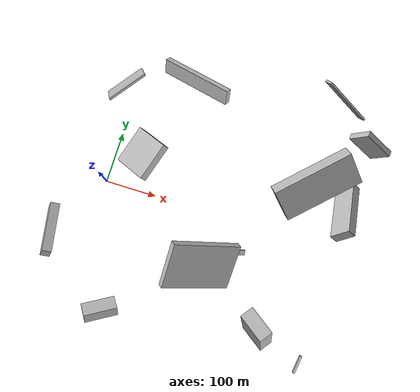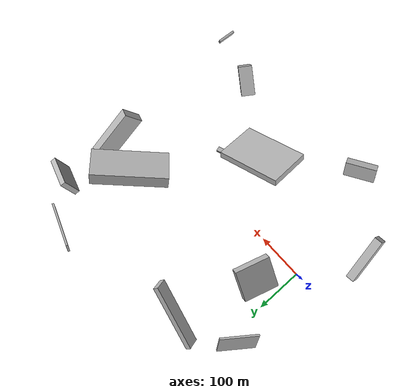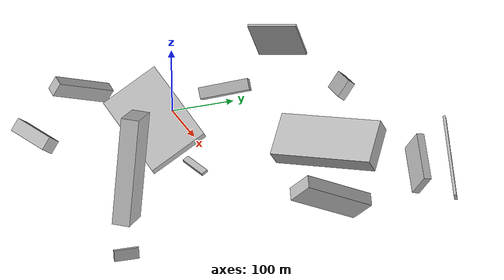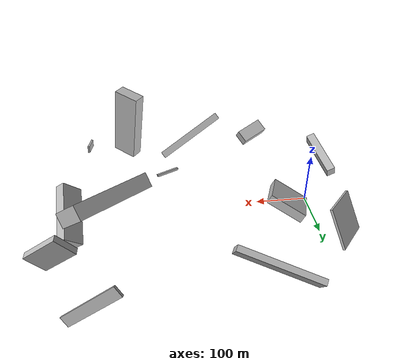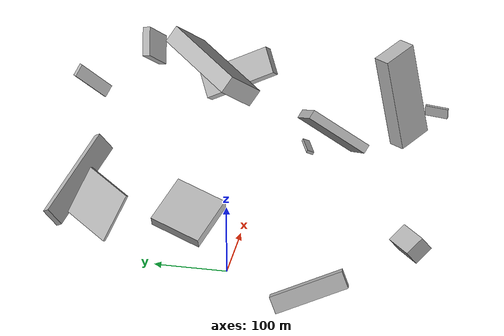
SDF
<sdf version="1.6">
 <world name="default">
  <scene>
   <sky><clouds><speed>12</speed></clouds></sky>
   <ambient>0.4 0.4 0.4 1</ambient>
   <background>0.7 0.7 0.7 1</background>
   <shadows>1</shadows>
  </scene>
  <gravity>0 0 -9.8066</gravity>
  <magnetic_field>6e-06 2.3e-05 -4.2e-05</magnetic_field>
  <physics default="0" name="default_physics" type="ode">
   <ode>
    <solver>
     <type>quick</type>
     <iters>10</iters>
     <sor>1.0</sor>
     <use_dynamic_moi_rescaling>0</use_dynamic_moi_rescaling>
    </solver>
    <constraints>
     <cfm>0</cfm>
     <erp>0.2</erp>
     <contact_max_correcting_vel>100</contact_max_correcting_vel>
     <contact_surface_layer>0.001</contact_surface_layer>
    </constraints>
   </ode>
   <max_step_size>0.004</max_step_size>
   <real_time_factor>1</real_time_factor>
   <real_time_update_rate>250</real_time_update_rate>
  </physics>
  <light name="sun" type="directional">
   <pose>0 0 10 0 0 0</pose>
   <diffuse>0.8 0.8 0.8 1</diffuse>
   <specular>0.2 0.2 0.2 1</specular>
   <attenuation>
    <range>1000</range>
    <constant>0.9</constant>
    <linear>0.01</linear>
    <quadratic>0.001</quadratic>
   </attenuation>
   <direction>-0.5 0.1 -0.9</direction>
  </light>
  <model name="building_1">
   <static>0</static>
   <pose>68.81872105369267 -232.17180622319296 36.772898238781195 2.882315274692647 -0.6226978160001785 -0.8772600780814191</pose>
   <link name="link">
    <gravity>0</gravity>
    <pose>0 0 10.5 0 0 0</pose>
    <collision name="collision"><geometry><box><size>29 63 21</size></box></geometry></collision>
    <visual name="visual">
     <cast_shadows>0</cast_shadows>
     <geometry><box><size>29 63 21</size></box></geometry>
     <material>
      <script>
       <uri>model://HANNAS_wall/materials/scripts</uri>
       <uri>model://HANNAS_wall/materials/textures</uri>
       <name>vrc/HANNAS_wall</name>
      </script>
     </material>
    </visual>
   </link>
  </model>
  <model name="building_2">
   <static>0</static>
   <pose>28.878116871375777 77.73210676834583 35.10764074832775 1.112135072751048 -0.19328678339280225 1.2476282840214816</pose>
   <link name="link">
    <gravity>0</gravity>
    <pose>0 0 35.5 0 0 0</pose>
    <collision name="collision"><geometry><box><size>75 17 71</size></box></geometry></collision>
    <visual name="visual">
     <cast_shadows>0</cast_shadows>
     <geometry><box><size>75 17 71</size></box></geometry>
     <material>
      <script>
       <uri>model://HANNAS_wall/materials/scripts</uri>
       <uri>model://HANNAS_wall/materials/textures</uri>
       <name>vrc/HANNAS_wall</name>
      </script>
     </material>
    </visual>
   </link>
  </model>
  <model name="building_3">
   <static>0</static>
   <pose>403.2759960505906 80.50551404331213 82.70663383247707 0.8990446433723384 0.11855411265143329 -2.366485642830715</pose>
   <link name="link">
    <gravity>0</gravity>
    <pose>0 0 32.5 0 0 0</pose>
    <collision name="collision"><geometry><box><size>150 27 65</size></box></geometry></collision>
    <visual name="visual">
     <cast_shadows>0</cast_shadows>
     <geometry><box><size>150 27 65</size></box></geometry>
     <material>
      <script>
       <uri>model://HANNAS_wall/materials/scripts</uri>
       <uri>model://HANNAS_wall/materials/textures</uri>
       <name>vrc/HANNAS_wall</name>
      </script>
     </material>
    </visual>
   </link>
  </model>
  <model name="building_4">
   <static>0</static>
   <pose>115.42625001743534 236.1780513359383 50.26779650257783 0.9707120905928287 -0.3255446618972254 -0.2958519671285137</pose>
   <link name="link">
    <gravity>0</gravity>
    <pose>0 0 5.5 0 0 0</pose>
    <collision name="collision"><geometry><box><size>150 29 11</size></box></geometry></collision>
    <visual name="visual">
     <cast_shadows>0</cast_shadows>
     <geometry><box><size>150 29 11</size></box></geometry>
     <material>
      <script>
       <uri>model://HANNAS_wall/materials/scripts</uri>
       <uri>model://HANNAS_wall/materials/textures</uri>
       <name>vrc/HANNAS_wall</name>
      </script>
     </material>
    </visual>
   </link>
  </model>
  <model name="building_5">
   <static>0</static>
   <pose>-56.46527732485482 -169.9210792375623 44.343099454779896 -2.372402190368029 -1.0564990634707871 0.98901039121095</pose>
   <link name="link">
    <gravity>0</gravity>
    <pose>0 0 51.0 0 0 0</pose>
    <collision name="collision"><geometry><box><size>24 18 102</size></box></geometry></collision>
    <visual name="visual">
     <cast_shadows>0</cast_shadows>
     <geometry><box><size>24 18 102</size></box></geometry>
     <material>
      <script>
       <uri>model://HANNAS_wall/materials/scripts</uri>
       <uri>model://HANNAS_wall/materials/textures</uri>
       <name>vrc/HANNAS_wall</name>
      </script>
     </material>
    </visual>
   </link>
  </model>
  <model name="building_6">
   <static>0</static>
   <pose>283.15141444331937 -87.89274090617222 70.24355251834518 0.8216682897535459 -0.7939785758687541 -0.6759209129113655</pose>
   <link name="link">
    <gravity>0</gravity>
    <pose>0 0 66.0 0 0 0</pose>
    <collision name="collision"><geometry><box><size>13 90 132</size></box></geometry></collision>
    <visual name="visual">
     <cast_shadows>0</cast_shadows>
     <geometry><box><size>13 90 132</size></box></geometry>
     <material>
      <script>
       <uri>model://HANNAS_wall/materials/scripts</uri>
       <uri>model://HANNAS_wall/materials/textures</uri>
       <name>vrc/HANNAS_wall</name>
      </script>
     </material>
    </visual>
   </link>
  </model>
  <model name="building_7">
   <static>0</static>
   <pose>298.55472662480645 -55.13459588291735 41.57834010324895 1.252013212033506 -1.1503324568773579 -0.9558031948790291</pose>
   <link name="link">
    <gravity>0</gravity>
    <pose>0 0 22.0 0 0 0</pose>
    <collision name="collision"><geometry><box><size>4 10 44</size></box></geometry></collision>
    <visual name="visual">
     <cast_shadows>0</cast_shadows>
     <geometry><box><size>4 10 44</size></box></geometry>
     <material>
      <script>
       <uri>model://HANNAS_wall/materials/scripts</uri>
       <uri>model://HANNAS_wall/materials/textures</uri>
       <name>vrc/HANNAS_wall</name>
      </script>
     </material>
    </visual>
   </link>
  </model>
  <model name="building_8">
   <static>0</static>
   <pose>446.44912338984915 198.16554992132856 69.67494387289712 0.24580085032005503 -0.6381766234065916 2.920461658732066</pose>
   <link name="link">
    <gravity>0</gravity>
    <pose>0 0 21.5 0 0 0</pose>
    <collision name="collision"><geometry><box><size>70 11 43</size></box></geometry></collision>
    <visual name="visual">
     <cast_shadows>0</cast_shadows>
     <geometry><box><size>70 11 43</size></box></geometry>
     <material>
      <script>
       <uri>model://HANNAS_wall/materials/scripts</uri>
       <uri>model://HANNAS_wall/materials/textures</uri>
       <name>vrc/HANNAS_wall</name>
      </script>
     </material>
    </visual>
   </link>
  </model>
  <model name="building_9">
   <static>0</static>
   <pose>18.158994974738654 204.9716329616992 95.04427384008696 1.8365461367578793 -1.042747509729992 -0.9087641409143514</pose>
   <link name="link">
    <gravity>0</gravity>
    <pose>0 0 39.0 0 0 0</pose>
    <collision name="collision"><geometry><box><size>70 4 78</size></box></geometry></collision>
    <visual name="visual">
     <cast_shadows>0</cast_shadows>
     <geometry><box><size>70 4 78</size></box></geometry>
     <material>
      <script>
       <uri>model://HANNAS_wall/materials/scripts</uri>
       <uri>model://HANNAS_wall/materials/textures</uri>
       <name>vrc/HANNAS_wall</name>
      </script>
     </material>
    </visual>
   </link>
  </model>
  <model name="building_10">
   <static>0</static>
   <pose>335.7012120857536 -168.5553670034185 93.05274737037152 1.3748244340063933 0.04684720470298254 0.9453950227588154</pose>
   <link name="link">
    <gravity>0</gravity>
    <pose>0 0 26.5 0 0 0</pose>
    <collision name="collision"><geometry><box><size>25 150 53</size></box></geometry></collision>
    <visual name="visual">
     <cast_shadows>0</cast_shadows>
     <geometry><box><size>25 150 53</size></box></geometry>
     <material>
      <script>
       <uri>model://HANNAS_wall/materials/scripts</uri>
       <uri>model://HANNAS_wall/materials/textures</uri>
       <name>vrc/HANNAS_wall</name>
      </script>
     </material>
    </visual>
   </link>
  </model>
  <model name="building_11">
   <static>0</static>
   <pose>462.6676664241812 70.42881770743747 49.79366912366481 0.8831317074276854 -0.46002498636068145 -1.4936986080838683</pose>
   <link name="link">
    <gravity>0</gravity>
    <pose>0 0 9.5 0 0 0</pose>
    <collision name="collision"><geometry><box><size>109 41 19</size></box></geometry></collision>
    <visual name="visual">
     <cast_shadows>0</cast_shadows>
     <geometry><box><size>109 41 19</size></box></geometry>
     <material>
      <script>
       <uri>model://HANNAS_wall/materials/scripts</uri>
       <uri>model://HANNAS_wall/materials/textures</uri>
       <name>vrc/HANNAS_wall</name>
      </script>
     </material>
    </visual>
   </link>
  </model>
  <model name="building_12">
   <static>0</static>
   <pose>402.2749403388525 276.5634204354467 59.92990721722762 2.40652292663699 0.18333608692547756 -1.969988467298489</pose>
   <link name="link">
    <gravity>0</gravity>
    <pose>0 0 9.5 0 0 0</pose>
    <collision name="collision"><geometry><box><size>4 122 19</size></box></geometry></collision>
    <visual name="visual">
     <cast_shadows>0</cast_shadows>
     <geometry><box><size>4 122 19</size></box></geometry>
     <material>
      <script>
       <uri>model://HANNAS_wall/materials/scripts</uri>
       <uri>model://HANNAS_wall/materials/textures</uri>
       <name>vrc/HANNAS_wall</name>
      </script>
     </material>
    </visual>
   </link>
  </model>
  <model name="building_13">
   <static>0</static>
   <pose>456.43901010285714 -206.8327710954414 22.270157385272594 -2.2224820146052684 -1.5106499058782084 -2.618470712602825</pose>
   <link name="link">
    <gravity>0</gravity>
    <pose>0 0 17.0 0 0 0</pose>
    <collision name="collision"><geometry><box><size>16 4 34</size></box></geometry></collision>
    <visual name="visual">
     <cast_shadows>0</cast_shadows>
     <geometry><box><size>16 4 34</size></box></geometry>
     <material>
      <script>
       <uri>model://HANNAS_wall/materials/scripts</uri>
       <uri>model://HANNAS_wall/materials/textures</uri>
       <name>vrc/HANNAS_wall</name>
      </script>
     </material>
    </visual>
   </link>
  </model>
 </world>
</sdf>
